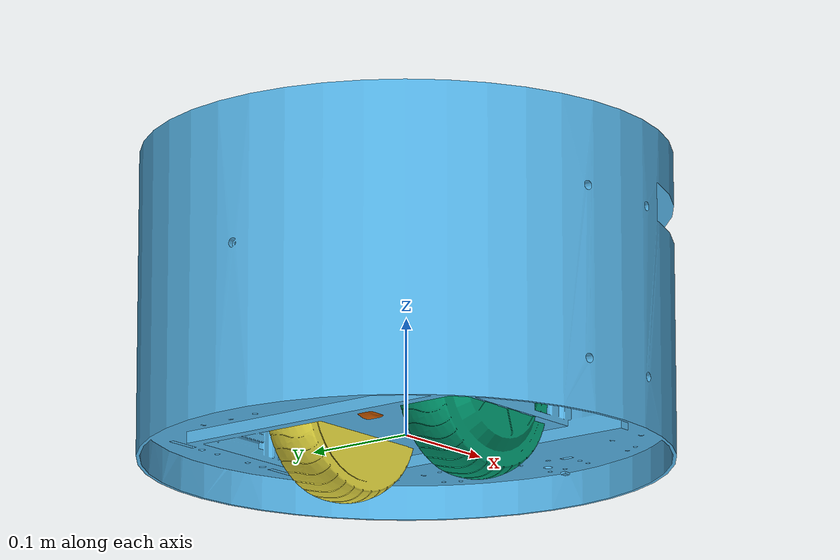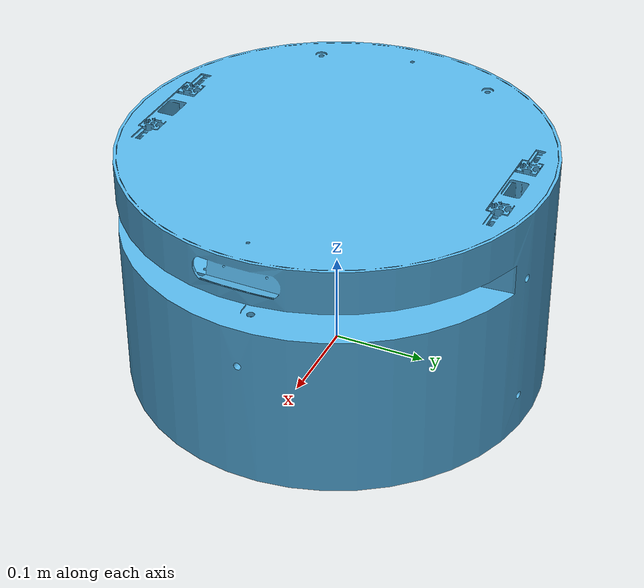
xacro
<?xml version="1.0"?>

<robot name="mobile_robot" xmlns:xacro="http://ros.org/wiki/xacro">

  <link name="base_footprint"/>

  <link name="base_link">
    <visual>
      <origin xyz="0 0 0" rpy="0 0 0" />
      <geometry>
        <mesh filename="package://robot_description/meshes/base_link.STL" />
      </geometry>
    </visual>
  </link>

  <joint name="base_joint" type="fixed">
    <parent link="base_footprint"/>
    <child link="base_link" />
    <origin xyz="0 0 0.033" rpy="0 0 0"/>
  </joint>

  <link name="wheel_right_link">
    <visual>
      <origin xyz="0 0 0" rpy="1.57 0 0" />
      <geometry>
        <mesh filename="package://robot_description/meshes/wheel_right_link.STL" />
      </geometry>
    </visual>
  </link>

  <joint name="wheel_right_joint" type="continuous">
    <origin xyz="0 -0.0701101849418637 0" rpy="0 0 0" />
    <parent link="base_link" />
    <child link="wheel_right_link" />
    <axis xyz="0 1 0" />
  </joint>

  <link
    name="wheel_left_link">
    <visual>
      <origin xyz="0 0 0" rpy="-1.57 0 0" />
      <geometry>
        <mesh filename="package://robot_description/meshes/wheel_left_link.STL" />
      </geometry>
    </visual>
  </link>

  <joint name="wheel_left_joint" type="continuous">
    <origin xyz="0 0.0701101849418642 0" rpy="0 0 0" />
    <parent link="base_link" />
    <child link="wheel_left_link" />
    <axis xyz="0 1 0" />
  </joint>

  <link name="caster_front_link">
    <visual>
      <origin xyz="0 0 0" rpy="0 0 0" />
      <geometry>
        <mesh filename="package://robot_description/meshes/caster_front_link.STL" />
      </geometry>
    </visual>
  </link>

  <joint name="caster_front_joint" type="fixed">
    <origin xyz="0.04755 0 -0.0275" rpy="0 0 0" />
    <parent link="base_link" />
    <child link="caster_front_link" />
    <axis xyz="0 0 0" />
  </joint>

  <link name="caster_rear_link">
    <visual>
      <origin xyz="0 0 0" rpy="0 0 0" />
      <geometry>
        <mesh filename="package://robot_description/meshes/caster_rear_link.STL" />
      </geometry>
    </visual>
  </link>

  <joint name="caster_rear_joint" type="fixed">
    <origin xyz="-0.04755 0 -0.0275" rpy="0 0 0" />
    <parent link="base_link" />
    <child link="caster_rear_link" />
    <axis xyz="0 0 0" />
  </joint>

</robot>
